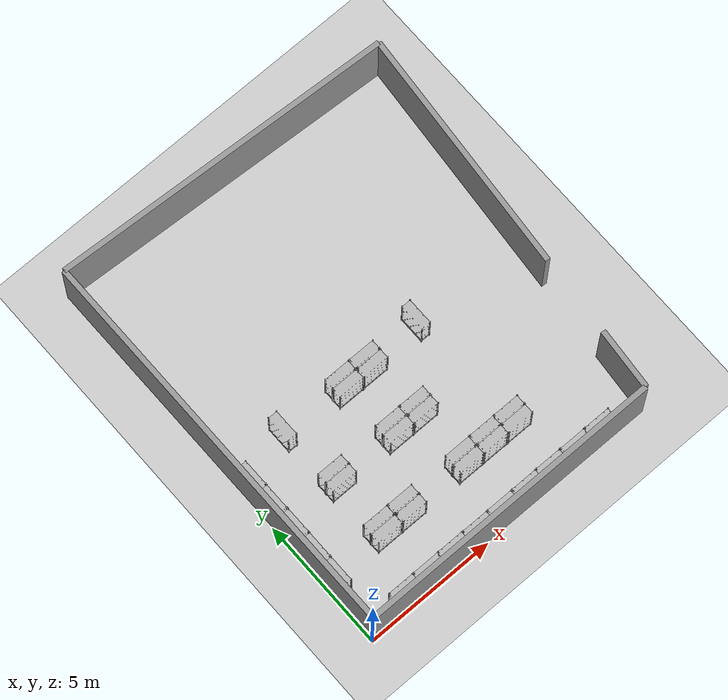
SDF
<sdf version="1.6">
 <world name="default">
  <model name="ground_plane">
   <static>1</static>
   <link name="link">
    <collision name="collision">
     <geometry><plane><normal>0 0 1</normal><size>100 100</size></plane></geometry>
     <surface>
      <contact><collide_bitmask>65535</collide_bitmask></contact>
      <friction><ode><mu>1000</mu><mu2>1000</mu2></ode></friction>
     </surface>
    </collision>
    <visual name="visual">
     <cast_shadows>0</cast_shadows>
     <geometry><plane><normal>0 0 1</normal><size>100 100</size></plane></geometry>
     <material>
      <script><uri>file://media/materials/scripts/gazebo.material</uri><name>Gazebo/Grey</name></script>
     </material>
    </visual>
   </link>
  </model>
  <model name="store_shelf_moduled_0">
   <link name="link">
    <collision name="collision">
     <geometry><mesh><uri>model://store_shelf_moduled/meshes/store_shelf_moduled.dae</uri></mesh></geometry>
    </collision>
    <visual name="visual">
     <geometry><mesh><uri>model://store_shelf_moduled/meshes/store_shelf_moduled.dae</uri></mesh></geometry>
    </visual>
    <inertial>
     <mass>1000</mass>
     <inertia>
      <ixx>840083</ixx>
      <ixy>0</ixy>
      <ixz>0</ixz>
      <iyy>475500</iyy>
      <iyz>0</iyz>
      <izz>1.30208e+06</izz>
     </inertia>
    </inertial>
   </link>
   <static>1</static>
   <pose>1.180256 0.2199997 0 0 0 -0.002564097</pose>
  </model>
  <model name="store_shelf_moduled_1">
   <link name="link">
    <collision name="collision">
     <geometry><mesh><uri>model://store_shelf_moduled/meshes/store_shelf_moduled.dae</uri></mesh></geometry>
    </collision>
    <visual name="visual">
     <geometry><mesh><uri>model://store_shelf_moduled/meshes/store_shelf_moduled.dae</uri></mesh></geometry>
    </visual>
    <inertial>
     <mass>1000</mass>
     <inertia>
      <ixx>840083</ixx>
      <ixy>0</ixy>
      <ixz>0</ixz>
      <iyy>475500</iyy>
      <iyz>0</iyz>
      <izz>1.30208e+06</izz>
     </inertia>
    </inertial>
   </link>
   <static>1</static>
   <pose>2.240256 0.2199997 0 0 0 -0.002564097</pose>
  </model>
  <model name="store_shelf_moduled_2">
   <link name="link">
    <collision name="collision">
     <geometry><mesh><uri>model://store_shelf_moduled/meshes/store_shelf_moduled.dae</uri></mesh></geometry>
    </collision>
    <visual name="visual">
     <geometry><mesh><uri>model://store_shelf_moduled/meshes/store_shelf_moduled.dae</uri></mesh></geometry>
    </visual>
    <inertial>
     <mass>1000</mass>
     <inertia>
      <ixx>840083</ixx>
      <ixy>0</ixy>
      <ixz>0</ixz>
      <iyy>475500</iyy>
      <iyz>0</iyz>
      <izz>1.30208e+06</izz>
     </inertia>
    </inertial>
   </link>
   <static>1</static>
   <pose>3.300256 0.2199997 0 0 0 -0.002564097</pose>
  </model>
  <model name="store_shelf_moduled_3">
   <link name="link">
    <collision name="collision">
     <geometry><mesh><uri>model://store_shelf_moduled/meshes/store_shelf_moduled.dae</uri></mesh></geometry>
    </collision>
    <visual name="visual">
     <geometry><mesh><uri>model://store_shelf_moduled/meshes/store_shelf_moduled.dae</uri></mesh></geometry>
    </visual>
    <inertial>
     <mass>1000</mass>
     <inertia>
      <ixx>840083</ixx>
      <ixy>0</ixy>
      <ixz>0</ixz>
      <iyy>475500</iyy>
      <iyz>0</iyz>
      <izz>1.30208e+06</izz>
     </inertia>
    </inertial>
   </link>
   <static>1</static>
   <pose>4.360256 0.2099997 0 0 0 -0.002564097</pose>
  </model>
  <model name="store_shelf_moduled_4">
   <link name="link">
    <collision name="collision">
     <geometry><mesh><uri>model://store_shelf_moduled/meshes/store_shelf_moduled.dae</uri></mesh></geometry>
    </collision>
    <visual name="visual">
     <geometry><mesh><uri>model://store_shelf_moduled/meshes/store_shelf_moduled.dae</uri></mesh></geometry>
    </visual>
    <inertial>
     <mass>1000</mass>
     <inertia>
      <ixx>840083</ixx>
      <ixy>0</ixy>
      <ixz>0</ixz>
      <iyy>475500</iyy>
      <iyz>0</iyz>
      <izz>1.30208e+06</izz>
     </inertia>
    </inertial>
   </link>
   <static>1</static>
   <pose>5.420256 0.2099997 0 0 0 -0.002564097</pose>
  </model>
  <model name="store_shelf_moduled_5">
   <link name="link">
    <collision name="collision">
     <geometry><mesh><uri>model://store_shelf_moduled/meshes/store_shelf_moduled.dae</uri></mesh></geometry>
    </collision>
    <visual name="visual">
     <geometry><mesh><uri>model://store_shelf_moduled/meshes/store_shelf_moduled.dae</uri></mesh></geometry>
    </visual>
    <inertial>
     <mass>1000</mass>
     <inertia>
      <ixx>840083</ixx>
      <ixy>0</ixy>
      <ixz>0</ixz>
      <iyy>475500</iyy>
      <iyz>0</iyz>
      <izz>1.30208e+06</izz>
     </inertia>
    </inertial>
   </link>
   <static>1</static>
   <pose>6.480257 0.2099997 0 0 0 -0.002564097</pose>
  </model>
  <model name="store_shelf_moduled_6">
   <link name="link">
    <collision name="collision">
     <geometry><mesh><uri>model://store_shelf_moduled/meshes/store_shelf_moduled.dae</uri></mesh></geometry>
    </collision>
    <visual name="visual">
     <geometry><mesh><uri>model://store_shelf_moduled/meshes/store_shelf_moduled.dae</uri></mesh></geometry>
    </visual>
    <inertial>
     <mass>1000</mass>
     <inertia>
      <ixx>840083</ixx>
      <ixy>0</ixy>
      <ixz>0</ixz>
      <iyy>475500</iyy>
      <iyz>0</iyz>
      <izz>1.30208e+06</izz>
     </inertia>
    </inertial>
   </link>
   <static>1</static>
   <pose>7.540257 0.2099997 0 0 0 -0.002564097</pose>
  </model>
  <model name="store_shelf_moduled_7">
   <link name="link">
    <collision name="collision">
     <geometry><mesh><uri>model://store_shelf_moduled/meshes/store_shelf_moduled.dae</uri></mesh></geometry>
    </collision>
    <visual name="visual">
     <geometry><mesh><uri>model://store_shelf_moduled/meshes/store_shelf_moduled.dae</uri></mesh></geometry>
    </visual>
    <inertial>
     <mass>1000</mass>
     <inertia>
      <ixx>840083</ixx>
      <ixy>0</ixy>
      <ixz>0</ixz>
      <iyy>475500</iyy>
      <iyz>0</iyz>
      <izz>1.30208e+06</izz>
     </inertia>
    </inertial>
   </link>
   <static>1</static>
   <pose>8.600256 0.1999997 0 0 0 -0.002564097</pose>
  </model>
  <model name="store_shelf_moduled_8">
   <link name="link">
    <collision name="collision">
     <geometry><mesh><uri>model://store_shelf_moduled/meshes/store_shelf_moduled.dae</uri></mesh></geometry>
    </collision>
    <visual name="visual">
     <geometry><mesh><uri>model://store_shelf_moduled/meshes/store_shelf_moduled.dae</uri></mesh></geometry>
    </visual>
    <inertial>
     <mass>1000</mass>
     <inertia>
      <ixx>840083</ixx>
      <ixy>0</ixy>
      <ixz>0</ixz>
      <iyy>475500</iyy>
      <iyz>0</iyz>
      <izz>1.30208e+06</izz>
     </inertia>
    </inertial>
   </link>
   <static>1</static>
   <pose>9.660256 0.1999997 0 0 0 -0.002564097</pose>
  </model>
  <model name="store_shelf_moduled_26">
   <link name="link">
    <collision name="collision">
     <geometry><mesh><uri>model://store_shelf_moduled/meshes/store_shelf_moduled.dae</uri></mesh></geometry>
    </collision>
    <visual name="visual">
     <geometry><mesh><uri>model://store_shelf_moduled/meshes/store_shelf_moduled.dae</uri></mesh></geometry>
    </visual>
    <inertial>
     <mass>1000</mass>
     <inertia>
      <ixx>840083</ixx>
      <ixy>0</ixy>
      <ixz>0</ixz>
      <iyy>475500</iyy>
      <iyz>0</iyz>
      <izz>1.30208e+06</izz>
     </inertia>
    </inertial>
   </link>
   <static>1</static>
   <pose>0.2099998 7.020195 0 0 0 -1.568844</pose>
  </model>
  <model name="store_shelf_moduled_27">
   <link name="link">
    <collision name="collision">
     <geometry><mesh><uri>model://store_shelf_moduled/meshes/store_shelf_moduled.dae</uri></mesh></geometry>
    </collision>
    <visual name="visual">
     <geometry><mesh><uri>model://store_shelf_moduled/meshes/store_shelf_moduled.dae</uri></mesh></geometry>
    </visual>
    <inertial>
     <mass>1000</mass>
     <inertia>
      <ixx>840083</ixx>
      <ixy>0</ixy>
      <ixz>0</ixz>
      <iyy>475500</iyy>
      <iyz>0</iyz>
      <izz>1.30208e+06</izz>
     </inertia>
    </inertial>
   </link>
   <static>1</static>
   <pose>0.2099998 5.960196 0 0 0 -1.568844</pose>
  </model>
  <model name="store_shelf_moduled_28">
   <link name="link">
    <collision name="collision">
     <geometry><mesh><uri>model://store_shelf_moduled/meshes/store_shelf_moduled.dae</uri></mesh></geometry>
    </collision>
    <visual name="visual">
     <geometry><mesh><uri>model://store_shelf_moduled/meshes/store_shelf_moduled.dae</uri></mesh></geometry>
    </visual>
    <inertial>
     <mass>1000</mass>
     <inertia>
      <ixx>840083</ixx>
      <ixy>0</ixy>
      <ixz>0</ixz>
      <iyy>475500</iyy>
      <iyz>0</iyz>
      <izz>1.30208e+06</izz>
     </inertia>
    </inertial>
   </link>
   <static>1</static>
   <pose>0.2199998 4.900195 0 0 0 -1.568844</pose>
  </model>
  <model name="store_shelf_moduled_29">
   <link name="link">
    <collision name="collision">
     <geometry><mesh><uri>model://store_shelf_moduled/meshes/store_shelf_moduled.dae</uri></mesh></geometry>
    </collision>
    <visual name="visual">
     <geometry><mesh><uri>model://store_shelf_moduled/meshes/store_shelf_moduled.dae</uri></mesh></geometry>
    </visual>
    <inertial>
     <mass>1000</mass>
     <inertia>
      <ixx>840083</ixx>
      <ixy>0</ixy>
      <ixz>0</ixz>
      <iyy>475500</iyy>
      <iyz>0</iyz>
      <izz>1.30208e+06</izz>
     </inertia>
    </inertial>
   </link>
   <static>1</static>
   <pose>0.2199998 3.840195 0 0 0 -1.568844</pose>
  </model>
  <model name="store_shelf_moduled_30">
   <link name="link">
    <collision name="collision">
     <geometry><mesh><uri>model://store_shelf_moduled/meshes/store_shelf_moduled.dae</uri></mesh></geometry>
    </collision>
    <visual name="visual">
     <geometry><mesh><uri>model://store_shelf_moduled/meshes/store_shelf_moduled.dae</uri></mesh></geometry>
    </visual>
    <inertial>
     <mass>1000</mass>
     <inertia>
      <ixx>840083</ixx>
      <ixy>0</ixy>
      <ixz>0</ixz>
      <iyy>475500</iyy>
      <iyz>0</iyz>
      <izz>1.30208e+06</izz>
     </inertia>
    </inertial>
   </link>
   <static>1</static>
   <pose>0.2199998 2.780195 0 0 0 -1.568844</pose>
  </model>
  <model name="store_shelf_moduled_31">
   <link name="link">
    <collision name="collision">
     <geometry><mesh><uri>model://store_shelf_moduled/meshes/store_shelf_moduled.dae</uri></mesh></geometry>
    </collision>
    <visual name="visual">
     <geometry><mesh><uri>model://store_shelf_moduled/meshes/store_shelf_moduled.dae</uri></mesh></geometry>
    </visual>
    <inertial>
     <mass>1000</mass>
     <inertia>
      <ixx>840083</ixx>
      <ixy>0</ixy>
      <ixz>0</ixz>
      <iyy>475500</iyy>
      <iyz>0</iyz>
      <izz>1.30208e+06</izz>
     </inertia>
    </inertial>
   </link>
   <static>1</static>
   <pose>2.05 2.47 0 0 0 0</pose>
  </model>
  <model name="store_shelf_moduled_32">
   <link name="link">
    <collision name="collision">
     <geometry><mesh><uri>model://store_shelf_moduled/meshes/store_shelf_moduled.dae</uri></mesh></geometry>
    </collision>
    <visual name="visual">
     <geometry><mesh><uri>model://store_shelf_moduled/meshes/store_shelf_moduled.dae</uri></mesh></geometry>
    </visual>
    <inertial>
     <mass>1000</mass>
     <inertia>
      <ixx>840083</ixx>
      <ixy>0</ixy>
      <ixz>0</ixz>
      <iyy>475500</iyy>
      <iyz>0</iyz>
      <izz>1.30208e+06</izz>
     </inertia>
    </inertial>
   </link>
   <static>1</static>
   <pose>3.11 2.47 0 0 0 -3.141593</pose>
  </model>
  <model name="store_shelf_moduled_33">
   <link name="link">
    <collision name="collision">
     <geometry><mesh><uri>model://store_shelf_moduled/meshes/store_shelf_moduled.dae</uri></mesh></geometry>
    </collision>
    <visual name="visual">
     <geometry><mesh><uri>model://store_shelf_moduled/meshes/store_shelf_moduled.dae</uri></mesh></geometry>
    </visual>
    <inertial>
     <mass>1000</mass>
     <inertia>
      <ixx>840083</ixx>
      <ixy>0</ixy>
      <ixz>0</ixz>
      <iyy>475500</iyy>
      <iyz>0</iyz>
      <izz>1.30208e+06</izz>
     </inertia>
    </inertial>
   </link>
   <static>1</static>
   <pose>3.11 2.47 0 0 0 0</pose>
  </model>
  <model name="store_shelf_moduled_34">
   <link name="link">
    <collision name="collision">
     <geometry><mesh><uri>model://store_shelf_moduled/meshes/store_shelf_moduled.dae</uri></mesh></geometry>
    </collision>
    <visual name="visual">
     <geometry><mesh><uri>model://store_shelf_moduled/meshes/store_shelf_moduled.dae</uri></mesh></geometry>
    </visual>
    <inertial>
     <mass>1000</mass>
     <inertia>
      <ixx>840083</ixx>
      <ixy>0</ixy>
      <ixz>0</ixz>
      <iyy>475500</iyy>
      <iyz>0</iyz>
      <izz>1.30208e+06</izz>
     </inertia>
    </inertial>
   </link>
   <static>1</static>
   <pose>4.17 2.47 0 0 0 -3.141593</pose>
  </model>
  <model name="store_shelf_moduled_35">
   <link name="link">
    <collision name="collision">
     <geometry><mesh><uri>model://store_shelf_moduled/meshes/store_shelf_moduled.dae</uri></mesh></geometry>
    </collision>
    <visual name="visual">
     <geometry><mesh><uri>model://store_shelf_moduled/meshes/store_shelf_moduled.dae</uri></mesh></geometry>
    </visual>
    <inertial>
     <mass>1000</mass>
     <inertia>
      <ixx>840083</ixx>
      <ixy>0</ixy>
      <ixz>0</ixz>
      <iyy>475500</iyy>
      <iyz>0</iyz>
      <izz>1.30208e+06</izz>
     </inertia>
    </inertial>
   </link>
   <static>1</static>
   <pose>2.47 6.57 0 0 0 1.570796</pose>
  </model>
  <model name="store_shelf_moduled_41">
   <link name="link">
    <collision name="collision">
     <geometry><mesh><uri>model://store_shelf_moduled/meshes/store_shelf_moduled.dae</uri></mesh></geometry>
    </collision>
    <visual name="visual">
     <geometry><mesh><uri>model://store_shelf_moduled/meshes/store_shelf_moduled.dae</uri></mesh></geometry>
    </visual>
    <inertial>
     <mass>1000</mass>
     <inertia>
      <ixx>840083</ixx>
      <ixy>0</ixy>
      <ixz>0</ixz>
      <iyy>475500</iyy>
      <iyz>0</iyz>
      <izz>1.30208e+06</izz>
     </inertia>
    </inertial>
   </link>
   <static>1</static>
   <pose>2.05 4.73 0 0 0 0</pose>
  </model>
  <model name="store_shelf_moduled_42">
   <link name="link">
    <collision name="collision">
     <geometry><mesh><uri>model://store_shelf_moduled/meshes/store_shelf_moduled.dae</uri></mesh></geometry>
    </collision>
    <visual name="visual">
     <geometry><mesh><uri>model://store_shelf_moduled/meshes/store_shelf_moduled.dae</uri></mesh></geometry>
    </visual>
    <inertial>
     <mass>1000</mass>
     <inertia>
      <ixx>840083</ixx>
      <ixy>0</ixy>
      <ixz>0</ixz>
      <iyy>475500</iyy>
      <iyz>0</iyz>
      <izz>1.30208e+06</izz>
     </inertia>
    </inertial>
   </link>
   <static>1</static>
   <pose>3.11 4.73 0 0 0 -3.141593</pose>
  </model>
  <model name="store_shelf_moduled_51">
   <link name="link">
    <collision name="collision">
     <geometry><mesh><uri>model://store_shelf_moduled/meshes/store_shelf_moduled.dae</uri></mesh></geometry>
    </collision>
    <visual name="visual">
     <geometry><mesh><uri>model://store_shelf_moduled/meshes/store_shelf_moduled.dae</uri></mesh></geometry>
    </visual>
    <inertial>
     <mass>1000</mass>
     <inertia>
      <ixx>840083</ixx>
      <ixy>0</ixy>
      <ixz>0</ixz>
      <iyy>475500</iyy>
      <iyz>0</iyz>
      <izz>1.30208e+06</izz>
     </inertia>
    </inertial>
   </link>
   <static>1</static>
   <pose>4.31 6.99 0 0 0 0</pose>
  </model>
  <model name="store_shelf_moduled_52">
   <link name="link">
    <collision name="collision">
     <geometry><mesh><uri>model://store_shelf_moduled/meshes/store_shelf_moduled.dae</uri></mesh></geometry>
    </collision>
    <visual name="visual">
     <geometry><mesh><uri>model://store_shelf_moduled/meshes/store_shelf_moduled.dae</uri></mesh></geometry>
    </visual>
    <inertial>
     <mass>1000</mass>
     <inertia>
      <ixx>840083</ixx>
      <ixy>0</ixy>
      <ixz>0</ixz>
      <iyy>475500</iyy>
      <iyz>0</iyz>
      <izz>1.30208e+06</izz>
     </inertia>
    </inertial>
   </link>
   <static>1</static>
   <pose>5.37 6.99 0 0 0 -3.141593</pose>
  </model>
  <model name="store_shelf_moduled_53">
   <link name="link">
    <collision name="collision">
     <geometry><mesh><uri>model://store_shelf_moduled/meshes/store_shelf_moduled.dae</uri></mesh></geometry>
    </collision>
    <visual name="visual">
     <geometry><mesh><uri>model://store_shelf_moduled/meshes/store_shelf_moduled.dae</uri></mesh></geometry>
    </visual>
    <inertial>
     <mass>1000</mass>
     <inertia>
      <ixx>840083</ixx>
      <ixy>0</ixy>
      <ixz>0</ixz>
      <iyy>475500</iyy>
      <iyz>0</iyz>
      <izz>1.30208e+06</izz>
     </inertia>
    </inertial>
   </link>
   <static>1</static>
   <pose>5.37 6.99 0 0 0 0</pose>
  </model>
  <model name="store_shelf_moduled_54">
   <link name="link">
    <collision name="collision">
     <geometry><mesh><uri>model://store_shelf_moduled/meshes/store_shelf_moduled.dae</uri></mesh></geometry>
    </collision>
    <visual name="visual">
     <geometry><mesh><uri>model://store_shelf_moduled/meshes/store_shelf_moduled.dae</uri></mesh></geometry>
    </visual>
    <inertial>
     <mass>1000</mass>
     <inertia>
      <ixx>840083</ixx>
      <ixy>0</ixy>
      <ixz>0</ixz>
      <iyy>475500</iyy>
      <iyz>0</iyz>
      <izz>1.30208e+06</izz>
     </inertia>
    </inertial>
   </link>
   <static>1</static>
   <pose>6.43 6.99 0 0 0 -3.141593</pose>
  </model>
  <model name="store_shelf_moduled_65">
   <link name="link">
    <collision name="collision">
     <geometry><mesh><uri>model://store_shelf_moduled/meshes/store_shelf_moduled.dae</uri></mesh></geometry>
    </collision>
    <visual name="visual">
     <geometry><mesh><uri>model://store_shelf_moduled/meshes/store_shelf_moduled.dae</uri></mesh></geometry>
    </visual>
    <inertial>
     <mass>1000</mass>
     <inertia>
      <ixx>840083</ixx>
      <ixy>0</ixy>
      <ixz>0</ixz>
      <iyy>475500</iyy>
      <iyz>0</iyz>
      <izz>1.30208e+06</izz>
     </inertia>
    </inertial>
   </link>
   <static>1</static>
   <pose>5.59 2.47 0 0 0 0</pose>
  </model>
  <model name="store_shelf_moduled_66">
   <link name="link">
    <collision name="collision">
     <geometry><mesh><uri>model://store_shelf_moduled/meshes/store_shelf_moduled.dae</uri></mesh></geometry>
    </collision>
    <visual name="visual">
     <geometry><mesh><uri>model://store_shelf_moduled/meshes/store_shelf_moduled.dae</uri></mesh></geometry>
    </visual>
    <inertial>
     <mass>1000</mass>
     <inertia>
      <ixx>840083</ixx>
      <ixy>0</ixy>
      <ixz>0</ixz>
      <iyy>475500</iyy>
      <iyz>0</iyz>
      <izz>1.30208e+06</izz>
     </inertia>
    </inertial>
   </link>
   <static>1</static>
   <pose>6.65 2.47 0 0 0 -3.141593</pose>
  </model>
  <model name="store_shelf_moduled_67">
   <link name="link">
    <collision name="collision">
     <geometry><mesh><uri>model://store_shelf_moduled/meshes/store_shelf_moduled.dae</uri></mesh></geometry>
    </collision>
    <visual name="visual">
     <geometry><mesh><uri>model://store_shelf_moduled/meshes/store_shelf_moduled.dae</uri></mesh></geometry>
    </visual>
    <inertial>
     <mass>1000</mass>
     <inertia>
      <ixx>840083</ixx>
      <ixy>0</ixy>
      <ixz>0</ixz>
      <iyy>475500</iyy>
      <iyz>0</iyz>
      <izz>1.30208e+06</izz>
     </inertia>
    </inertial>
   </link>
   <static>1</static>
   <pose>6.65 2.47 0 0 0 0</pose>
  </model>
  <model name="store_shelf_moduled_68">
   <link name="link">
    <collision name="collision">
     <geometry><mesh><uri>model://store_shelf_moduled/meshes/store_shelf_moduled.dae</uri></mesh></geometry>
    </collision>
    <visual name="visual">
     <geometry><mesh><uri>model://store_shelf_moduled/meshes/store_shelf_moduled.dae</uri></mesh></geometry>
    </visual>
    <inertial>
     <mass>1000</mass>
     <inertia>
      <ixx>840083</ixx>
      <ixy>0</ixy>
      <ixz>0</ixz>
      <iyy>475500</iyy>
      <iyz>0</iyz>
      <izz>1.30208e+06</izz>
     </inertia>
    </inertial>
   </link>
   <static>1</static>
   <pose>7.71 2.47 0 0 0 -3.141593</pose>
  </model>
  <model name="store_shelf_moduled_69">
   <link name="link">
    <collision name="collision">
     <geometry><mesh><uri>model://store_shelf_moduled/meshes/store_shelf_moduled.dae</uri></mesh></geometry>
    </collision>
    <visual name="visual">
     <geometry><mesh><uri>model://store_shelf_moduled/meshes/store_shelf_moduled.dae</uri></mesh></geometry>
    </visual>
    <inertial>
     <mass>1000</mass>
     <inertia>
      <ixx>840083</ixx>
      <ixy>0</ixy>
      <ixz>0</ixz>
      <iyy>475500</iyy>
      <iyz>0</iyz>
      <izz>1.30208e+06</izz>
     </inertia>
    </inertial>
   </link>
   <static>1</static>
   <pose>7.71 2.47 0 0 0 0</pose>
  </model>
  <model name="store_shelf_moduled_70">
   <link name="link">
    <collision name="collision">
     <geometry><mesh><uri>model://store_shelf_moduled/meshes/store_shelf_moduled.dae</uri></mesh></geometry>
    </collision>
    <visual name="visual">
     <geometry><mesh><uri>model://store_shelf_moduled/meshes/store_shelf_moduled.dae</uri></mesh></geometry>
    </visual>
    <inertial>
     <mass>1000</mass>
     <inertia>
      <ixx>840083</ixx>
      <ixy>0</ixy>
      <ixz>0</ixz>
      <iyy>475500</iyy>
      <iyz>0</iyz>
      <izz>1.30208e+06</izz>
     </inertia>
    </inertial>
   </link>
   <static>1</static>
   <pose>8.77 2.47 0 0 0 -3.141593</pose>
  </model>
  <model name="store_shelf_moduled_71">
   <link name="link">
    <collision name="collision">
     <geometry><mesh><uri>model://store_shelf_moduled/meshes/store_shelf_moduled.dae</uri></mesh></geometry>
    </collision>
    <visual name="visual">
     <geometry><mesh><uri>model://store_shelf_moduled/meshes/store_shelf_moduled.dae</uri></mesh></geometry>
    </visual>
    <inertial>
     <mass>1000</mass>
     <inertia>
      <ixx>840083</ixx>
      <ixy>0</ixy>
      <ixz>0</ixz>
      <iyy>475500</iyy>
      <iyz>0</iyz>
      <izz>1.30208e+06</izz>
     </inertia>
    </inertial>
   </link>
   <static>1</static>
   <pose>8.27 6.57 0 0 0 1.570796</pose>
  </model>
  <model name="store_shelf_moduled_73">
   <link name="link">
    <collision name="collision">
     <geometry><mesh><uri>model://store_shelf_moduled/meshes/store_shelf_moduled.dae</uri></mesh></geometry>
    </collision>
    <visual name="visual">
     <geometry><mesh><uri>model://store_shelf_moduled/meshes/store_shelf_moduled.dae</uri></mesh></geometry>
    </visual>
    <inertial>
     <mass>1000</mass>
     <inertia>
      <ixx>840083</ixx>
      <ixy>0</ixy>
      <ixz>0</ixz>
      <iyy>475500</iyy>
      <iyz>0</iyz>
      <izz>1.30208e+06</izz>
     </inertia>
    </inertial>
   </link>
   <static>1</static>
   <pose>4.53 4.73 0 0 0 0</pose>
  </model>
  <model name="store_shelf_moduled_74">
   <link name="link">
    <collision name="collision">
     <geometry><mesh><uri>model://store_shelf_moduled/meshes/store_shelf_moduled.dae</uri></mesh></geometry>
    </collision>
    <visual name="visual">
     <geometry><mesh><uri>model://store_shelf_moduled/meshes/store_shelf_moduled.dae</uri></mesh></geometry>
    </visual>
    <inertial>
     <mass>1000</mass>
     <inertia>
      <ixx>840083</ixx>
      <ixy>0</ixy>
      <ixz>0</ixz>
      <iyy>475500</iyy>
      <iyz>0</iyz>
      <izz>1.30208e+06</izz>
     </inertia>
    </inertial>
   </link>
   <static>1</static>
   <pose>5.59 4.73 0 0 0 -3.141593</pose>
  </model>
  <model name="store_shelf_moduled_75">
   <link name="link">
    <collision name="collision">
     <geometry><mesh><uri>model://store_shelf_moduled/meshes/store_shelf_moduled.dae</uri></mesh></geometry>
    </collision>
    <visual name="visual">
     <geometry><mesh><uri>model://store_shelf_moduled/meshes/store_shelf_moduled.dae</uri></mesh></geometry>
    </visual>
    <inertial>
     <mass>1000</mass>
     <inertia>
      <ixx>840083</ixx>
      <ixy>0</ixy>
      <ixz>0</ixz>
      <iyy>475500</iyy>
      <iyz>0</iyz>
      <izz>1.30208e+06</izz>
     </inertia>
    </inertial>
   </link>
   <static>1</static>
   <pose>5.59 4.73 0 0 0 0</pose>
  </model>
  <model name="store_shelf_moduled_76">
   <link name="link">
    <collision name="collision">
     <geometry><mesh><uri>model://store_shelf_moduled/meshes/store_shelf_moduled.dae</uri></mesh></geometry>
    </collision>
    <visual name="visual">
     <geometry><mesh><uri>model://store_shelf_moduled/meshes/store_shelf_moduled.dae</uri></mesh></geometry>
    </visual>
    <inertial>
     <mass>1000</mass>
     <inertia>
      <ixx>840083</ixx>
      <ixy>0</ixy>
      <ixz>0</ixz>
      <iyy>475500</iyy>
      <iyz>0</iyz>
      <izz>1.30208e+06</izz>
     </inertia>
    </inertial>
   </link>
   <static>1</static>
   <pose>6.65 4.73 0 0 0 -3.141593</pose>
  </model>
  <model name="grey_wall0">
   <static>1</static>
   <link name="link">
    <pose>5.98 0.115 1.4 0 0 -0.002564097</pose>
    <visual name="visual">
     <cast_shadows>0</cast_shadows>
     <geometry><box><size>11.70004 0.2 2.8</size></box></geometry>
     <material>
      <name>vrc/grey_wall</name>
      <script>
       <uri>model://grey_wall/materials/scripts</uri>
       <uri>model://grey_wall/materials/textures</uri>
       <name>vrc/grey_wall</name>
      </script>
     </material>
    </visual>
    <collision name="collision">
     <geometry><box><size>11.70004 0.2 2.8</size></box></geometry>
     <max_contacts>5</max_contacts>
    </collision>
   </link>
  </model>
  <model name="grey_wall1">
   <static>1</static>
   <link name="link">
    <pose>11.93 1.255 1.4 0 0 1.484432</pose>
    <visual name="visual">
     <cast_shadows>0</cast_shadows>
     <geometry><box><size>2.318642 0.2 2.8</size></box></geometry>
     <material>
      <name>vrc/grey_wall</name>
      <script>
       <uri>model://grey_wall/materials/scripts</uri>
       <uri>model://grey_wall/materials/textures</uri>
       <name>vrc/grey_wall</name>
      </script>
     </material>
    </visual>
    <collision name="collision">
     <geometry><box><size>2.318642 0.2 2.8</size></box></geometry>
     <max_contacts>5</max_contacts>
    </collision>
   </link>
  </model>
  <model name="grey_wall2">
   <static>1</static>
   <link name="link">
    <pose>12.69 10.07 1.4 0 0 1.485352</pose>
    <visual name="visual">
     <cast_shadows>0</cast_shadows>
     <geometry><box><size>9.374199 0.2 2.8</size></box></geometry>
     <material>
      <name>vrc/grey_wall</name>
      <script>
       <uri>model://grey_wall/materials/scripts</uri>
       <uri>model://grey_wall/materials/textures</uri>
       <name>vrc/grey_wall</name>
      </script>
     </material>
    </visual>
    <collision name="collision">
     <geometry><box><size>9.374199 0.2 2.8</size></box></geometry>
     <max_contacts>5</max_contacts>
    </collision>
   </link>
  </model>
  <model name="grey_wall3">
   <static>1</static>
   <link name="link">
    <pose>6.595 15.12 1.4 0 0 3.083153</pose>
    <visual name="visual">
     <cast_shadows>0</cast_shadows>
     <geometry><box><size>13.01221 0.2 2.8</size></box></geometry>
     <material>
      <name>vrc/grey_wall</name>
      <script>
       <uri>model://grey_wall/materials/scripts</uri>
       <uri>model://grey_wall/materials/textures</uri>
       <name>vrc/grey_wall</name>
      </script>
     </material>
    </visual>
    <collision name="collision">
     <geometry><box><size>13.01221 0.2 2.8</size></box></geometry>
     <max_contacts>5</max_contacts>
    </collision>
   </link>
  </model>
  <model name="grey_wall4">
   <static>1</static>
   <link name="link">
    <pose>0.115 7.815 1.4 0 0 -1.568844</pose>
    <visual name="visual">
     <cast_shadows>0</cast_shadows>
     <geometry><box><size>15.37003 0.2 2.8</size></box></geometry>
     <material>
      <name>vrc/grey_wall</name>
      <script>
       <uri>model://grey_wall/materials/scripts</uri>
       <uri>model://grey_wall/materials/textures</uri>
       <name>vrc/grey_wall</name>
      </script>
     </material>
    </visual>
    <collision name="collision">
     <geometry><box><size>15.37003 0.2 2.8</size></box></geometry>
     <max_contacts>5</max_contacts>
    </collision>
   </link>
  </model>
 </world>
</sdf>
